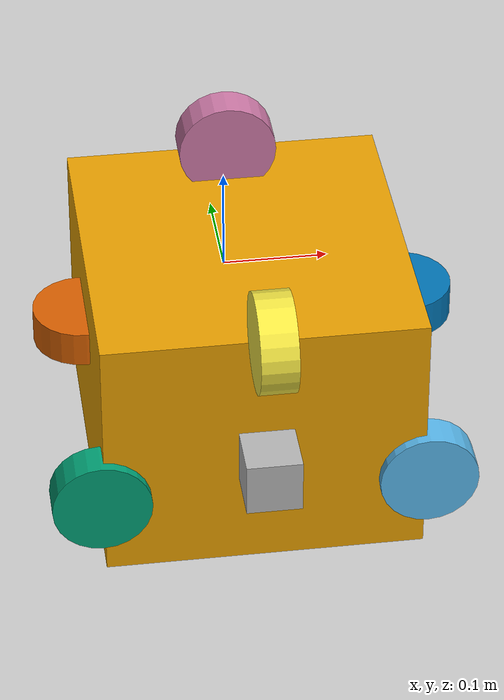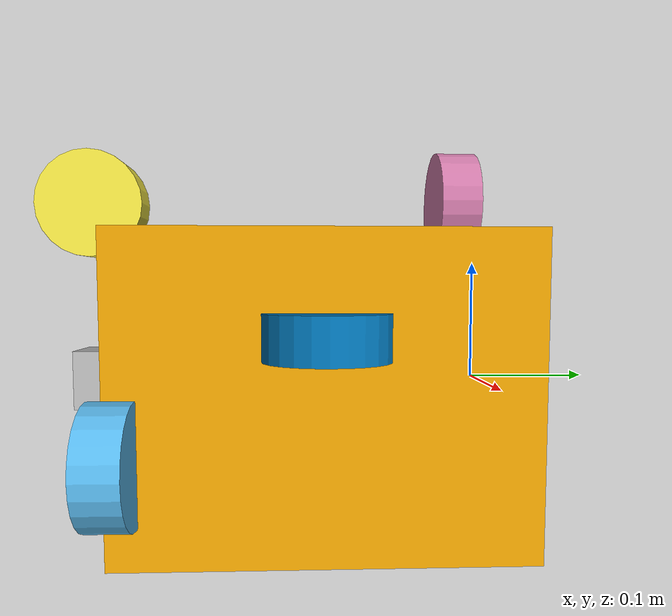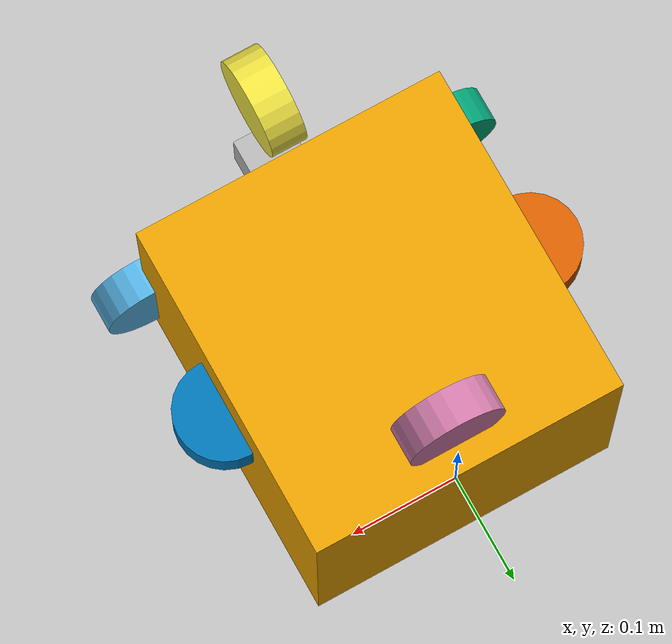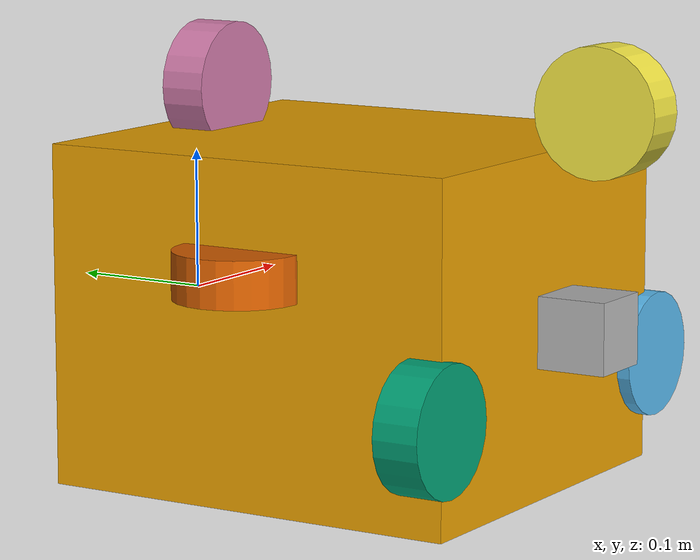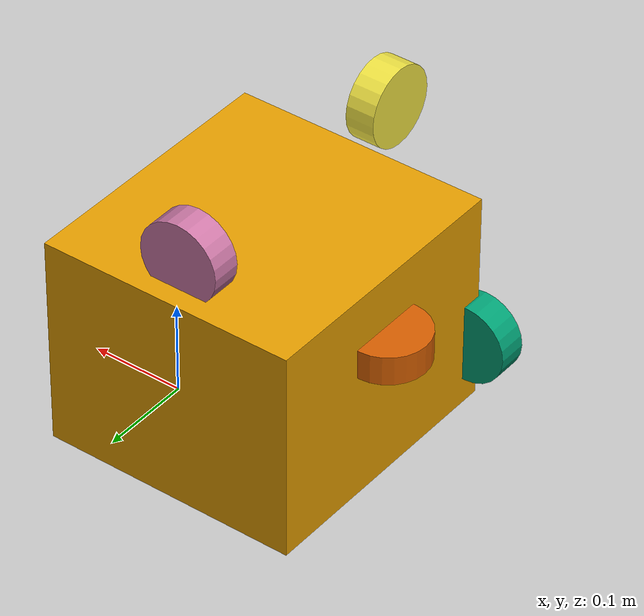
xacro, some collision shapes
<?xml version="1.0"?>
<robot name="nautilus"
  xmlns:xacro="http://www.ros.org/wiki/xacro">
  <!-- Constants -->
  <xacro:property name="PI" value="3.1415926535897931"/>
  <xacro:property name="camera_size" value=".05"/>
  <xacro:property name="width" value=".29"/>
  <xacro:property name="length" value=".31"/>
  <xacro:property name="height" value=".24"/>

  <xacro:property name="thruster_radius" value=".045"/>
  <xacro:property name="thruster_height" value=".033"/>

  <!-- Begin defining the ROV -->
  <link name="body">
    <inertial>
      <origin xyz="0.0 -.135 0.0" rpy="0.0 0.0 0.0"/>
      <!-- TOOD: get a better mass estimate -->
      <mass value="21.576"/>
      <inertia ixx="0.083" ixy="0.0" ixz="0.0" iyy="0.083" iyz="0.0" izz="0.0"/>
    </inertial>

    <collision name="body">
      <origin xyz="0.0 -.135 0.0"/>
      <geometry>
        <box size="${width} ${length} ${height}"/>
      </geometry>
    </collision>

    <visual name="body">
      <geometry>
        <mesh filename="model://nautilus/meshes/rov22.dae"/>
      </geometry>
    </visual>
  </link>

  <!-- Generic Definitions -->
  <xacro:macro name="thrusters" params="thrusterName x y z r p yaw">
    <link name="${thrusterName}">
      <inertial>
        <mass value="${PI * thruster_radius * thruster_radius * thruster_height * 1000}"/>
        <inertia ixx="0.4" ixy="0.0" ixz="0.0" iyy="0.4" iyz="0.0" izz="0.2"/>
      </inertial>

      <collision name="${thrusterName}">
        <geometry>
          <cylinder radius="${thruster_radius}" length="${thruster_height}"/>
        </geometry>
      </collision>

      <visual name="${thrusterName}">
        <geometry>
          <cylinder radius="${thruster_radius}" length="${thruster_height}"/>
        </geometry>
      </visual>
    </link>

    <joint name="${thrusterName}_joint" type="fixed">
      <origin xyz="${x} ${y} ${z}" rpy="${r} ${p} ${yaw}"/>
      <parent link="body"/>
      <child link="${thrusterName}"/>
    </joint>
  </xacro:macro>

  <xacro:macro name="cameras" params="cameraName x y z r p yaw">

    <link name="${cameraName}">
      <inertial>
        <mass value="${camera_size * camera_size * camera_size * 1000}"/>
        <inertia ixx="1e-4" ixy="0.0" ixz="0.0" iyy="1e-4" iyz="0.0" izz="1e-4"/>
      </inertial>

      <visual name="${cameraName}">
        <geometry>
          <box size="${camera_size} ${camera_size} ${camera_size}"/>
        </geometry>
      </visual>

      <collision name="${cameraName}">
        <geometry>
          <box size="${camera_size} ${camera_size} ${camera_size}"/>
        </geometry>
      </collision>
    </link>

    <joint name="${cameraName}_joint" type="fixed">
      <origin xyz="${x} ${y} ${z}" rpy="${r} ${p} ${yaw}"/>
      <parent link="body"/>
      <child link="${cameraName}"/>
    </joint>

  </xacro:macro>

  <!-- Instantiations -->
  <!-- current model has the the directions -->
  <!-- x+ -> left -->
  <!-- y+ -> back -->
  <!-- z+ -> up -->

  <!-- A: Port Bow -->
  <xacro:thrusters thrusterName="motor_A" x=".1475" y="-.283" z="-.044" r="${pi/2}" p="0.0" yaw="0"/>

  <!-- B: Starboard Bow -->
  <xacro:thrusters thrusterName="motor_B" x="-.1475" y="-.283" z="-.044" r="${pi/2}" p="0.0" yaw="0"/>

  <!-- C: Bow -->
  <xacro:thrusters thrusterName="motor_C" x="0" y="-.331" z=".15" r="0" p="${pi/2}" yaw="0"/>

  <!-- D: Port -->
  <xacro:thrusters thrusterName="motor_D" x=".1475" y="-.135" z=".044" r="0.0" p="0.0" yaw="0.0"/>

  <!-- E: Starboard -->
  <xacro:thrusters thrusterName="motor_E" x="-.1475" y="-.135" z=".044" r="0.0" p="0.0" yaw="0.0"/>

  <!-- F: Stern -->
  <xacro:thrusters thrusterName="motor_F" x="0" y="-.019" z=".15" r="${pi/2}" p="0.0" yaw="0"/>

  <xacro:cameras cameraName="camera1" x="0.0" y="-0.32" z="0.0" r="0.0" p="0.0" yaw="0.0"/>
  <xacro:cameras cameraName="camera2" x="0.0" y="-0.20" z="-.125" r="0.0" p="0.0" yaw="0.0"/>

  <!-- Sensor Definitions -->
  <gazebo>
    <plugin name="imu_plugin" filename="libgazebo_ros_imu.so">
      <alwaysOn>true</alwaysOn>
      <bodyName>body</bodyName>
      <topicName>imu</topicName>
      <serviceName>imu_service</serviceName>
      <gaussianNoise>0.0</gaussianNoise>
      <updateRate>20.0</updateRate>
    </plugin>
  </gazebo>

  <!-- Plugins -->
  <xacro:include filename="$(find nautilus_description)/urdf/rov22.gazebo"/>

</robot>
